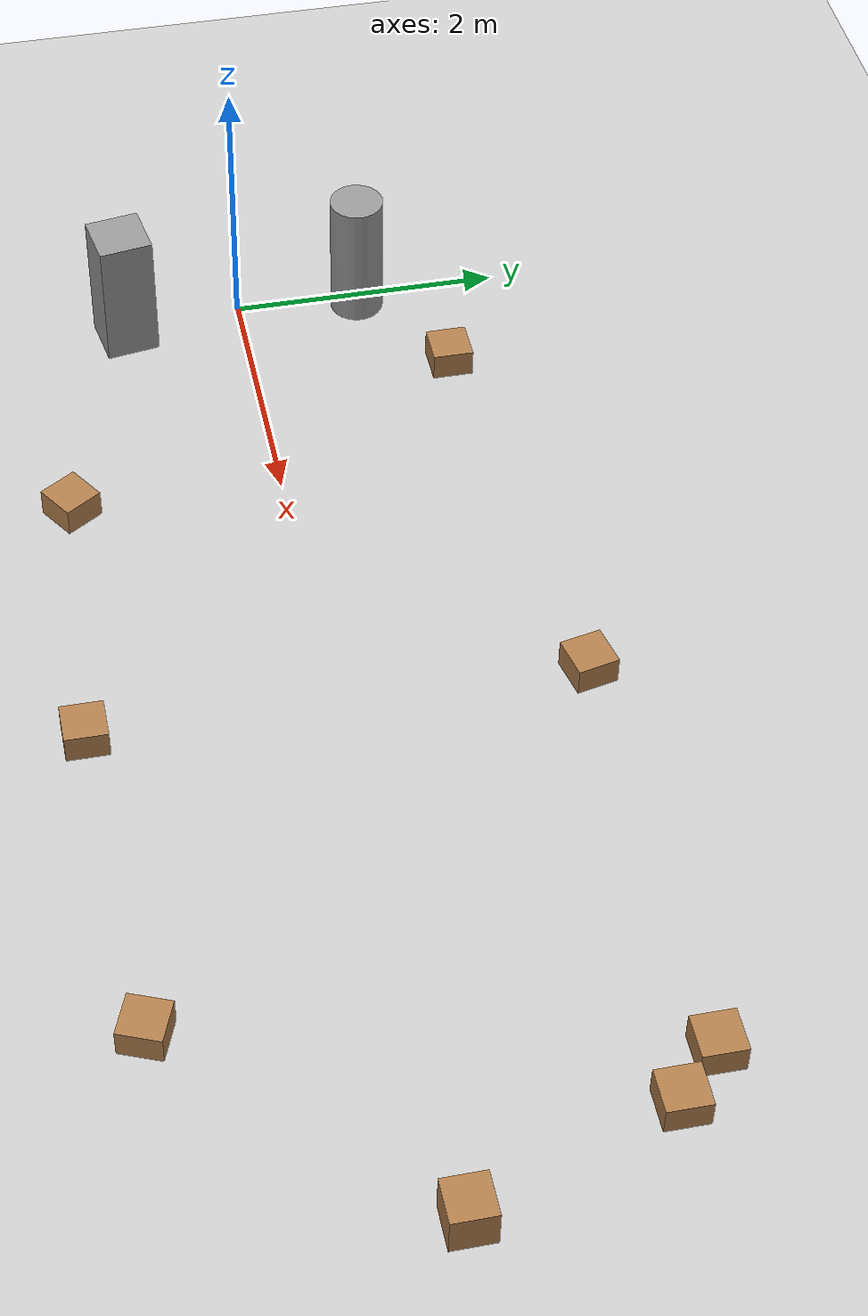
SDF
<sdf version="1.7">
 <world name="default">
  <scene><ambient>0.4 0.4 0.4 1</ambient><background>0.7 0.7 0.7 1</background><shadows>1</shadows></scene>
  <light name="sun" type="directional">
   <pose>0 0 10 0 -0 0</pose>
   <diffuse>0.8 0.8 0.8 1</diffuse>
   <specular>0.2 0.2 0.2 1</specular>
   <attenuation>
    <range>1000</range>
    <constant>0.9</constant>
    <linear>0.01</linear>
    <quadratic>0.001</quadratic>
   </attenuation>
   <direction>-0.5 0.1 -0.9</direction>
   <spot><inner_angle>0</inner_angle><outer_angle>0</outer_angle><falloff>0</falloff></spot>
  </light>
  <model name="ground_plane">
   <static>1</static>
   <link name="link">
    <collision name="collision">
     <geometry><plane><normal>0 0 1</normal><size>100 100</size></plane></geometry>
     <surface>
      <contact><collide_bitmask>65535</collide_bitmask></contact>
      <friction><ode><mu>100</mu><mu2>50</mu2></ode></friction>
     </surface>
    </collision>
    <visual name="visual">
     <cast_shadows>0</cast_shadows>
     <geometry><plane><normal>0 0 1</normal><size>100 100</size></plane></geometry>
     <material>
      <script><uri>file://media/materials/scripts/gazebo.material</uri><name>Gazebo/Grey</name></script>
     </material>
    </visual>
   </link>
  </model>
  <physics type="ode">
   <real_time_update_rate>1000</real_time_update_rate>
   <max_step_size>0.001</max_step_size>
   <real_time_factor>1</real_time_factor>
   <ode>
    <solver>
     <type>quick</type>
     <iters>150</iters>
     <precon_iters>0</precon_iters>
     <sor>1.4</sor>
     <use_dynamic_moi_rescaling>1</use_dynamic_moi_rescaling>
    </solver>
    <constraints>
     <cfm>1e-05</cfm>
     <erp>0.2</erp>
     <contact_max_correcting_vel>2000</contact_max_correcting_vel>
     <contact_surface_layer>0.01</contact_surface_layer>
    </constraints>
   </ode>
  </physics>
  <gravity>0 0 -9.8</gravity>
  <magnetic_field>6e-06 2.3e-05 -4.2e-05</magnetic_field>
  <atmosphere type="adiabatic"/>
  <spherical_coordinates>
   <surface_model>EARTH_WGS84</surface_model>
   <latitude_deg>0</latitude_deg>
   <longitude_deg>0</longitude_deg>
   <elevation>0</elevation>
   <heading_deg>0</heading_deg>
  </spherical_coordinates>
  <model name="wood_cube_30cm">
   <link name="link">
    <pose>0 -0 0.05 0 -0 0</pose>
    <inertial>
     <mass>0.5167</mass>
     <inertia>
      <ixx>0.00086117</ixx>
      <ixy>0</ixy>
      <ixz>0</ixz>
      <iyy>0.00086117</iyy>
      <iyz>0</iyz>
      <izz>0.00086117</izz>
     </inertia>
    </inertial>
    <visual name="visual">
     <geometry><box><size>0.3 0.3 0.3</size></box></geometry>
     <material>
      <script><uri>file://media/materials/scripts/gazebo.material</uri><name>Gazebo/Wood</name></script>
      <shader type="pixel"><normal_map>__default__</normal_map></shader>
      <ambient>1 1 1 1</ambient>
      <diffuse>1 1 1 1</diffuse>
      <specular>0.2 0.2 0.2 1</specular>
      <emissive>0 0 0 1</emissive>
     </material>
    </visual>
    <collision name="collision">
     <geometry><box><size>0.3 0.3 0.3</size></box></geometry>
     <surface>
      <friction>
       <ode><mu>1</mu><mu2>1</mu2><fdir1>0 0 0</fdir1><slip1>0</slip1><slip2>0</slip2></ode>
       <torsional>
        <coefficient>1</coefficient>
        <patch_radius>0</patch_radius>
        <surface_radius>0.01</surface_radius>
        <use_patch_radius>0</use_patch_radius>
        <ode><slip>0</slip></ode>
       </torsional>
      </friction>
      <bounce><restitution_coefficient>0</restitution_coefficient><threshold>1e+06</threshold></bounce>
      <contact>
       <collide_without_contact>0</collide_without_contact>
       <collide_without_contact_bitmask>1</collide_without_contact_bitmask>
       <collide_bitmask>1</collide_bitmask>
       <ode>
        <soft_cfm>0</soft_cfm>
        <soft_erp>0.2</soft_erp>
        <kp>100000</kp>
        <kd>100</kd>
        <max_vel>100</max_vel>
        <min_depth>0.001</min_depth>
       </ode>
       <bullet>
        <split_impulse>1</split_impulse>
        <split_impulse_penetration_threshold>-0.01</split_impulse_penetration_threshold>
        <soft_cfm>0</soft_cfm>
        <soft_erp>0.2</soft_erp>
        <kp>100000</kp>
        <kd>100</kd>
       </bullet>
      </contact>
     </surface>
    </collision>
   </link>
   <static>1</static>
   <pose>0.912458 1.47866 -0.001013 0 -0 0</pose>
  </model>
  <model name="wood_cube_30cm_0">
   <link name="link">
    <pose>0 -0 0.05 0 -0 0</pose>
    <inertial>
     <mass>0.5167</mass>
     <inertia>
      <ixx>0.00086117</ixx>
      <ixy>0</ixy>
      <ixz>0</ixz>
      <iyy>0.00086117</iyy>
      <iyz>0</iyz>
      <izz>0.00086117</izz>
     </inertia>
    </inertial>
    <visual name="visual">
     <geometry><box><size>0.3 0.3 0.3</size></box></geometry>
     <material>
      <script><uri>file://media/materials/scripts/gazebo.material</uri><name>Gazebo/Wood</name></script>
      <shader type="pixel"><normal_map>__default__</normal_map></shader>
      <ambient>1 1 1 1</ambient>
      <diffuse>1 1 1 1</diffuse>
      <specular>0.2 0.2 0.2 1</specular>
      <emissive>0 0 0 1</emissive>
     </material>
    </visual>
    <collision name="collision">
     <geometry><box><size>0.3 0.3 0.3</size></box></geometry>
     <surface>
      <friction>
       <ode><mu>1</mu><mu2>1</mu2><fdir1>0 0 0</fdir1><slip1>0</slip1><slip2>0</slip2></ode>
       <torsional>
        <coefficient>1</coefficient>
        <patch_radius>0</patch_radius>
        <surface_radius>0.01</surface_radius>
        <use_patch_radius>0</use_patch_radius>
        <ode><slip>0</slip></ode>
       </torsional>
      </friction>
      <bounce><restitution_coefficient>0</restitution_coefficient><threshold>1e+06</threshold></bounce>
      <contact>
       <collide_without_contact>0</collide_without_contact>
       <collide_without_contact_bitmask>1</collide_without_contact_bitmask>
       <collide_bitmask>1</collide_bitmask>
       <ode>
        <soft_cfm>0</soft_cfm>
        <soft_erp>0.2</soft_erp>
        <kp>100000</kp>
        <kd>100</kd>
        <max_vel>100</max_vel>
        <min_depth>0.001</min_depth>
       </ode>
       <bullet>
        <split_impulse>1</split_impulse>
        <split_impulse_penetration_threshold>-0.01</split_impulse_penetration_threshold>
        <soft_cfm>0</soft_cfm>
        <soft_erp>0.2</soft_erp>
        <kp>100000</kp>
        <kd>100</kd>
       </bullet>
      </contact>
     </surface>
    </collision>
   </link>
   <static>1</static>
   <pose>1.98023 -1.52526 0 0 -0 0.572095</pose>
  </model>
  <model name="wood_cube_30cm_1">
   <link name="link">
    <pose>0 -0 0.05 0 -0 0</pose>
    <inertial>
     <mass>0.5167</mass>
     <inertia>
      <ixx>0.00086117</ixx>
      <ixy>0</ixy>
      <ixz>0</ixz>
      <iyy>0.00086117</iyy>
      <iyz>0</iyz>
      <izz>0.00086117</izz>
     </inertia>
    </inertial>
    <visual name="visual">
     <geometry><box><size>0.3 0.3 0.3</size></box></geometry>
     <material>
      <script><uri>file://media/materials/scripts/gazebo.material</uri><name>Gazebo/Wood</name></script>
      <shader type="pixel"><normal_map>__default__</normal_map></shader>
      <ambient>1 1 1 1</ambient>
      <diffuse>1 1 1 1</diffuse>
      <specular>0.2 0.2 0.2 1</specular>
      <emissive>0 0 0 1</emissive>
     </material>
    </visual>
    <collision name="collision">
     <geometry><box><size>0.3 0.3 0.3</size></box></geometry>
     <surface>
      <friction>
       <ode><mu>1</mu><mu2>1</mu2><fdir1>0 0 0</fdir1><slip1>0</slip1><slip2>0</slip2></ode>
       <torsional>
        <coefficient>1</coefficient>
        <patch_radius>0</patch_radius>
        <surface_radius>0.01</surface_radius>
        <use_patch_radius>0</use_patch_radius>
        <ode><slip>0</slip></ode>
       </torsional>
      </friction>
      <bounce><restitution_coefficient>0</restitution_coefficient><threshold>1e+06</threshold></bounce>
      <contact>
       <collide_without_contact>0</collide_without_contact>
       <collide_without_contact_bitmask>1</collide_without_contact_bitmask>
       <collide_bitmask>1</collide_bitmask>
       <ode>
        <soft_cfm>0</soft_cfm>
        <soft_erp>0.2</soft_erp>
        <kp>100000</kp>
        <kd>100</kd>
        <max_vel>100</max_vel>
        <min_depth>0.001</min_depth>
       </ode>
       <bullet>
        <split_impulse>1</split_impulse>
        <split_impulse_penetration_threshold>-0.01</split_impulse_penetration_threshold>
        <soft_cfm>0</soft_cfm>
        <soft_erp>0.2</soft_erp>
        <kp>100000</kp>
        <kd>100</kd>
       </bullet>
      </contact>
     </surface>
    </collision>
   </link>
   <static>1</static>
   <pose>4.17079 1.73734 0 0 -0 0.214139</pose>
  </model>
  <model name="wood_cube_30cm_2">
   <link name="link">
    <pose>0 -0 0.05 0 -0 0</pose>
    <inertial>
     <mass>0.5167</mass>
     <inertia>
      <ixx>0.00086117</ixx>
      <ixy>0</ixy>
      <ixz>0</ixz>
      <iyy>0.00086117</iyy>
      <iyz>0</iyz>
      <izz>0.00086117</izz>
     </inertia>
    </inertial>
    <visual name="visual">
     <geometry><box><size>0.3 0.3 0.3</size></box></geometry>
     <material>
      <script><uri>file://media/materials/scripts/gazebo.material</uri><name>Gazebo/Wood</name></script>
      <shader type="pixel"><normal_map>__default__</normal_map></shader>
      <ambient>1 1 1 1</ambient>
      <diffuse>1 1 1 1</diffuse>
      <specular>0.2 0.2 0.2 1</specular>
      <emissive>0 0 0 1</emissive>
     </material>
    </visual>
    <collision name="collision">
     <geometry><box><size>0.3 0.3 0.3</size></box></geometry>
     <surface>
      <friction>
       <ode><mu>1</mu><mu2>1</mu2><fdir1>0 0 0</fdir1><slip1>0</slip1><slip2>0</slip2></ode>
       <torsional>
        <coefficient>1</coefficient>
        <patch_radius>0</patch_radius>
        <surface_radius>0.01</surface_radius>
        <use_patch_radius>0</use_patch_radius>
        <ode><slip>0</slip></ode>
       </torsional>
      </friction>
      <bounce><restitution_coefficient>0</restitution_coefficient><threshold>1e+06</threshold></bounce>
      <contact>
       <collide_without_contact>0</collide_without_contact>
       <collide_without_contact_bitmask>1</collide_without_contact_bitmask>
       <collide_bitmask>1</collide_bitmask>
       <ode>
        <soft_cfm>0</soft_cfm>
        <soft_erp>0.2</soft_erp>
        <kp>100000</kp>
        <kd>100</kd>
        <max_vel>100</max_vel>
        <min_depth>0.001</min_depth>
       </ode>
       <bullet>
        <split_impulse>1</split_impulse>
        <split_impulse_penetration_threshold>-0.01</split_impulse_penetration_threshold>
        <soft_cfm>0</soft_cfm>
        <soft_erp>0.2</soft_erp>
        <kp>100000</kp>
        <kd>100</kd>
       </bullet>
      </contact>
     </surface>
    </collision>
   </link>
   <static>1</static>
   <pose>6.52856 -1.61628 0 0 0 -0.383782</pose>
  </model>
  <model name="wood_cube_30cm_3">
   <link name="link">
    <pose>0 -0 0.05 0 -0 0</pose>
    <inertial>
     <mass>0.5167</mass>
     <inertia>
      <ixx>0.00086117</ixx>
      <ixy>0</ixy>
      <ixz>0</ixz>
      <iyy>0.00086117</iyy>
      <iyz>0</iyz>
      <izz>0.00086117</izz>
     </inertia>
    </inertial>
    <visual name="visual">
     <geometry><box><size>0.3 0.3 0.3</size></box></geometry>
     <material>
      <script><uri>file://media/materials/scripts/gazebo.material</uri><name>Gazebo/Wood</name></script>
      <shader type="pixel"><normal_map>__default__</normal_map></shader>
      <ambient>1 1 1 1</ambient>
      <diffuse>1 1 1 1</diffuse>
      <specular>0.2 0.2 0.2 1</specular>
      <emissive>0 0 0 1</emissive>
     </material>
    </visual>
    <collision name="collision">
     <geometry><box><size>0.3 0.3 0.3</size></box></geometry>
     <surface>
      <friction>
       <ode><mu>1</mu><mu2>1</mu2><fdir1>0 0 0</fdir1><slip1>0</slip1><slip2>0</slip2></ode>
       <torsional>
        <coefficient>1</coefficient>
        <patch_radius>0</patch_radius>
        <surface_radius>0.01</surface_radius>
        <use_patch_radius>0</use_patch_radius>
        <ode><slip>0</slip></ode>
       </torsional>
      </friction>
      <bounce><restitution_coefficient>0</restitution_coefficient><threshold>1e+06</threshold></bounce>
      <contact>
       <collide_without_contact>0</collide_without_contact>
       <collide_without_contact_bitmask>1</collide_without_contact_bitmask>
       <collide_bitmask>1</collide_bitmask>
       <ode>
        <soft_cfm>0</soft_cfm>
        <soft_erp>0.2</soft_erp>
        <kp>100000</kp>
        <kd>100</kd>
        <max_vel>100</max_vel>
        <min_depth>0.001</min_depth>
       </ode>
       <bullet>
        <split_impulse>1</split_impulse>
        <split_impulse_penetration_threshold>-0.01</split_impulse_penetration_threshold>
        <soft_cfm>0</soft_cfm>
        <soft_erp>0.2</soft_erp>
        <kp>100000</kp>
        <kd>100</kd>
       </bullet>
      </contact>
     </surface>
    </collision>
   </link>
   <static>1</static>
   <pose>7.61646 1.42352 0 0 -0 0</pose>
  </model>
  <model name="wood_cube_30cm_4">
   <link name="link">
    <pose>0 -0 0.05 0 -0 0</pose>
    <inertial>
     <mass>0.5167</mass>
     <inertia>
      <ixx>0.00086117</ixx>
      <ixy>0</ixy>
      <ixz>0</ixz>
      <iyy>0.00086117</iyy>
      <iyz>0</iyz>
      <izz>0.00086117</izz>
     </inertia>
    </inertial>
    <visual name="visual">
     <geometry><box><size>0.3 0.3 0.3</size></box></geometry>
     <material>
      <script><uri>file://media/materials/scripts/gazebo.material</uri><name>Gazebo/Wood</name></script>
      <shader type="pixel"><normal_map>__default__</normal_map></shader>
      <ambient>1 1 1 1</ambient>
      <diffuse>1 1 1 1</diffuse>
      <specular>0.2 0.2 0.2 1</specular>
      <emissive>0 0 0 1</emissive>
     </material>
    </visual>
    <collision name="collision">
     <geometry><box><size>0.3 0.3 0.3</size></box></geometry>
     <surface>
      <friction>
       <ode><mu>1</mu><mu2>1</mu2><fdir1>0 0 0</fdir1><slip1>0</slip1><slip2>0</slip2></ode>
       <torsional>
        <coefficient>1</coefficient>
        <patch_radius>0</patch_radius>
        <surface_radius>0.01</surface_radius>
        <use_patch_radius>0</use_patch_radius>
        <ode><slip>0</slip></ode>
       </torsional>
      </friction>
      <bounce><restitution_coefficient>0</restitution_coefficient><threshold>1e+06</threshold></bounce>
      <contact>
       <collide_without_contact>0</collide_without_contact>
       <collide_without_contact_bitmask>1</collide_without_contact_bitmask>
       <collide_bitmask>1</collide_bitmask>
       <ode>
        <soft_cfm>0</soft_cfm>
        <soft_erp>0.2</soft_erp>
        <kp>100000</kp>
        <kd>100</kd>
        <max_vel>100</max_vel>
        <min_depth>0.001</min_depth>
       </ode>
       <bullet>
        <split_impulse>1</split_impulse>
        <split_impulse_penetration_threshold>-0.01</split_impulse_penetration_threshold>
        <soft_cfm>0</soft_cfm>
        <soft_erp>0.2</soft_erp>
        <kp>100000</kp>
        <kd>100</kd>
       </bullet>
      </contact>
     </surface>
    </collision>
   </link>
   <static>1</static>
   <pose>7.28987 1.73556 0 0 -0 0</pose>
  </model>
  <model name="wood_cube_30cm_5">
   <link name="link">
    <pose>0 -0 0.05 0 -0 0</pose>
    <inertial>
     <mass>0.5167</mass>
     <inertia>
      <ixx>0.00086117</ixx>
      <ixy>0</ixy>
      <ixz>0</ixz>
      <iyy>0.00086117</iyy>
      <iyz>0</iyz>
      <izz>0.00086117</izz>
     </inertia>
    </inertial>
    <visual name="visual">
     <geometry><box><size>0.3 0.3 0.3</size></box></geometry>
     <material>
      <script><uri>file://media/materials/scripts/gazebo.material</uri><name>Gazebo/Wood</name></script>
      <shader type="pixel"><normal_map>__default__</normal_map></shader>
      <ambient>1 1 1 1</ambient>
      <diffuse>1 1 1 1</diffuse>
      <specular>0.2 0.2 0.2 1</specular>
      <emissive>0 0 0 1</emissive>
     </material>
    </visual>
    <collision name="collision">
     <geometry><box><size>0.3 0.3 0.3</size></box></geometry>
     <surface>
      <friction>
       <ode><mu>1</mu><mu2>1</mu2><fdir1>0 0 0</fdir1><slip1>0</slip1><slip2>0</slip2></ode>
       <torsional>
        <coefficient>1</coefficient>
        <patch_radius>0</patch_radius>
        <surface_radius>0.01</surface_radius>
        <use_patch_radius>0</use_patch_radius>
        <ode><slip>0</slip></ode>
       </torsional>
      </friction>
      <bounce><restitution_coefficient>0</restitution_coefficient><threshold>1e+06</threshold></bounce>
      <contact>
       <collide_without_contact>0</collide_without_contact>
       <collide_without_contact_bitmask>1</collide_without_contact_bitmask>
       <collide_bitmask>1</collide_bitmask>
       <ode>
        <soft_cfm>0</soft_cfm>
        <soft_erp>0.2</soft_erp>
        <kp>100000</kp>
        <kd>100</kd>
        <max_vel>100</max_vel>
        <min_depth>0.001</min_depth>
       </ode>
       <bullet>
        <split_impulse>1</split_impulse>
        <split_impulse_penetration_threshold>-0.01</split_impulse_penetration_threshold>
        <soft_cfm>0</soft_cfm>
        <soft_erp>0.2</soft_erp>
        <kp>100000</kp>
        <kd>100</kd>
       </bullet>
      </contact>
     </surface>
    </collision>
   </link>
   <static>1</static>
   <pose>4.1322 -1.69091 0 0 -0 0</pose>
  </model>
  <model name="wood_cube_30cm_6">
   <link name="link">
    <pose>0 -0 0.05 0 -0 0</pose>
    <inertial>
     <mass>0.5167</mass>
     <inertia>
      <ixx>0.00086117</ixx>
      <ixy>0</ixy>
      <ixz>0</ixz>
      <iyy>0.00086117</iyy>
      <iyz>0</iyz>
      <izz>0.00086117</izz>
     </inertia>
    </inertial>
    <visual name="visual">
     <geometry><box><size>0.3 0.3 0.3</size></box></geometry>
     <material>
      <script><uri>file://media/materials/scripts/gazebo.material</uri><name>Gazebo/Wood</name></script>
      <shader type="pixel"><normal_map>__default__</normal_map></shader>
      <ambient>1 1 1 1</ambient>
      <diffuse>1 1 1 1</diffuse>
      <specular>0.2 0.2 0.2 1</specular>
      <emissive>0 0 0 1</emissive>
     </material>
    </visual>
    <collision name="collision">
     <geometry><box><size>0.3 0.3 0.3</size></box></geometry>
     <surface>
      <friction>
       <ode><mu>0</mu><mu2>0</mu2><fdir1>0 0 0</fdir1><slip1>0</slip1><slip2>0</slip2></ode>
       <torsional>
        <coefficient>1</coefficient>
        <patch_radius>0</patch_radius>
        <surface_radius>0.01</surface_radius>
        <use_patch_radius>0</use_patch_radius>
        <ode><slip>0</slip></ode>
       </torsional>
      </friction>
      <bounce><restitution_coefficient>0</restitution_coefficient><threshold>1e+06</threshold></bounce>
      <contact>
       <collide_without_contact>0</collide_without_contact>
       <collide_without_contact_bitmask>1</collide_without_contact_bitmask>
       <collide_bitmask>1</collide_bitmask>
       <ode>
        <soft_cfm>0</soft_cfm>
        <soft_erp>0.2</soft_erp>
        <kp>100000</kp>
        <kd>100</kd>
        <max_vel>100</max_vel>
        <min_depth>0.001</min_depth>
       </ode>
       <bullet>
        <split_impulse>1</split_impulse>
        <split_impulse_penetration_threshold>-0.01</split_impulse_penetration_threshold>
        <soft_cfm>0</soft_cfm>
        <soft_erp>0.2</soft_erp>
        <kp>100000</kp>
        <kd>100</kd>
       </bullet>
      </contact>
     </surface>
    </collision>
   </link>
   <static>0</static>
   <pose>8.14583 0.014574 0.098987 0 -0 0.005962</pose>
   <plugin name="model_push" filename="libmodel_push_plugin.so"/>
  </model>
  <model name="unit_cylinder_20">
   <link name="link">
    <inertial>
     <mass>1</mass>
     <inertia><ixx>0.145833</ixx><ixy>0</ixy><ixz>0</ixz><iyy>0.145833</iyy><iyz>0</iyz><izz>0.125</izz></inertia>
    </inertial>
    <visual name="visual">
     <geometry><cylinder><radius>0.2</radius><length>1</length></cylinder></geometry>
     <material>
      <script><name>Gazebo/Grey</name><uri>file://media/materials/scripts/gazebo.material</uri></script>
      <shader type="pixel"><normal_map>__default__</normal_map></shader>
      <ambient>0.3 0.3 0.3 1</ambient>
      <diffuse>0.7 0.7 0.7 1</diffuse>
      <specular>0.01 0.01 0.01 1</specular>
      <emissive>0 0 0 1</emissive>
     </material>
    </visual>
    <collision name="collision">
     <geometry><cylinder><radius>0.2</radius><length>1</length></cylinder></geometry>
     <surface>
      <friction>
       <ode><mu>1</mu><mu2>1</mu2><fdir1>0 0 0</fdir1><slip1>0</slip1><slip2>0</slip2></ode>
       <torsional>
        <coefficient>1</coefficient>
        <patch_radius>0</patch_radius>
        <surface_radius>0</surface_radius>
        <use_patch_radius>1</use_patch_radius>
        <ode><slip>0</slip></ode>
       </torsional>
      </friction>
      <bounce><restitution_coefficient>0</restitution_coefficient><threshold>1e+06</threshold></bounce>
      <contact>
       <collide_without_contact>0</collide_without_contact>
       <collide_without_contact_bitmask>1</collide_without_contact_bitmask>
       <collide_bitmask>1</collide_bitmask>
       <ode>
        <soft_cfm>0</soft_cfm>
        <soft_erp>0.2</soft_erp>
        <kp>1e+13</kp>
        <kd>1</kd>
        <max_vel>0.01</max_vel>
        <min_depth>0</min_depth>
       </ode>
       <bullet>
        <split_impulse>1</split_impulse>
        <split_impulse_penetration_threshold>-0.01</split_impulse_penetration_threshold>
        <soft_cfm>0</soft_cfm>
        <soft_erp>0.2</soft_erp>
        <kp>1e+13</kp>
        <kd>1</kd>
       </bullet>
      </contact>
     </surface>
    </collision>
   </link>
   <static>1</static>
   <pose>0.105489 0.919015 0.499993 4e-06 4e-06 -0</pose>
  </model>
  <model name="unit_box_20">
   <link name="link">
    <inertial>
     <mass>1</mass>
     <inertia>
      <ixx>0.166667</ixx>
      <ixy>0</ixy>
      <ixz>0</ixz>
      <iyy>0.166667</iyy>
      <iyz>0</iyz>
      <izz>0.166667</izz>
     </inertia>
    </inertial>
    <pose>0 0 0 0 -0 0.1584</pose>
    <visual name="visual">
     <geometry><box><size>0.4 0.4 1</size></box></geometry>
     <material>
      <script><name>Gazebo/Grey</name><uri>file://media/materials/scripts/gazebo.material</uri></script>
      <shader type="pixel"><normal_map>__default__</normal_map></shader>
      <ambient>0.3 0.3 0.3 1</ambient>
      <diffuse>0.7 0.7 0.7 1</diffuse>
      <specular>0.01 0.01 0.01 1</specular>
      <emissive>0 0 0 1</emissive>
     </material>
    </visual>
    <collision name="collision">
     <geometry><box><size>0.4 0.4 1</size></box></geometry>
     <surface>
      <friction>
       <ode><mu>1</mu><mu2>1</mu2><fdir1>0 0 0</fdir1><slip1>0</slip1><slip2>0</slip2></ode>
       <torsional>
        <coefficient>1</coefficient>
        <patch_radius>0</patch_radius>
        <surface_radius>0</surface_radius>
        <use_patch_radius>1</use_patch_radius>
        <ode><slip>0</slip></ode>
       </torsional>
      </friction>
      <bounce><restitution_coefficient>0</restitution_coefficient><threshold>1e+06</threshold></bounce>
      <contact>
       <collide_without_contact>0</collide_without_contact>
       <collide_without_contact_bitmask>1</collide_without_contact_bitmask>
       <collide_bitmask>1</collide_bitmask>
       <ode>
        <soft_cfm>0</soft_cfm>
        <soft_erp>0.2</soft_erp>
        <kp>1e+13</kp>
        <kd>1</kd>
        <max_vel>0.01</max_vel>
        <min_depth>0</min_depth>
       </ode>
       <bullet>
        <split_impulse>1</split_impulse>
        <split_impulse_penetration_threshold>-0.01</split_impulse_penetration_threshold>
        <soft_cfm>0</soft_cfm>
        <soft_erp>0.2</soft_erp>
        <kp>1e+13</kp>
        <kd>1</kd>
       </bullet>
      </contact>
     </surface>
    </collision>
   </link>
   <static>1</static>
   <pose>0.155511 -0.889917 0.5 0 -0 0</pose>
  </model>
 </world>
</sdf>
